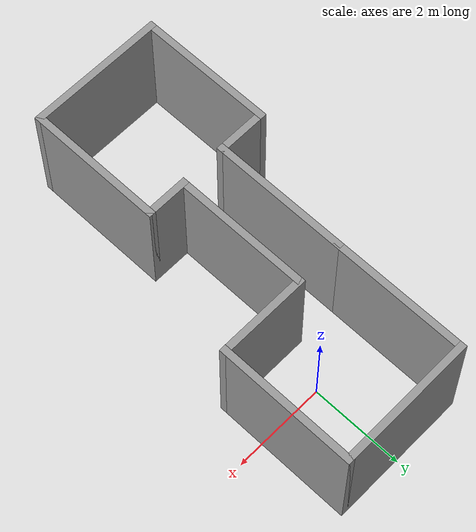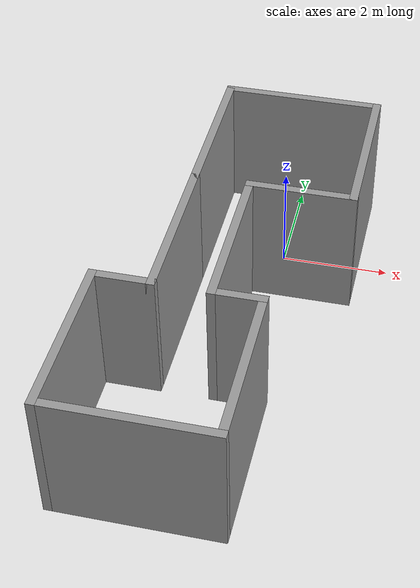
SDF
<?xml version='1.0'?>
<sdf version='1.7'>
  <model name='map'>
    <pose>-0.55321 -2.39059 0 0 -0 0</pose>
    <link name='Wall_10'>
      <collision name='Wall_10_Collision'>
        <geometry>
          <box>
            <size>3 0.15 2.5</size>
          </box>
        </geometry>
        <pose>0 0 1.25 0 -0 0</pose>
      </collision>
      <visual name='Wall_10_Visual'>
        <pose>0 0 1.25 0 -0 0</pose>
        <geometry>
          <box>
            <size>3 0.15 2.5</size>
          </box>
        </geometry>
        <material>
          <script>
            <uri>file://media/materials/scripts/gazebo.material</uri>
            <name>Gazebo/Grey</name>
          </script>
          <ambient>1 1 1 1</ambient>
        </material>
        <meta>
          <layer>0</layer>
        </meta>
      </visual>
      <pose>0.5 4.275 0 0 -0 0</pose>
    </link>
    <link name='Wall_11'>
      <collision name='Wall_11_Collision'>
        <geometry>
          <box>
            <size>3 0.15 2.5</size>
          </box>
        </geometry>
        <pose>0 0 1.25 0 -0 0</pose>
      </collision>
      <visual name='Wall_11_Visual'>
        <pose>0 0 1.25 0 -0 0</pose>
        <geometry>
          <box>
            <size>3 0.15 2.5</size>
          </box>
        </geometry>
        <material>
          <script>
            <uri>file://media/materials/scripts/gazebo.material</uri>
            <name>Gazebo/Grey</name>
          </script>
          <ambient>1 1 1 1</ambient>
        </material>
        <meta>
          <layer>0</layer>
        </meta>
      </visual>
      <pose>1.925 2.85 0 0 -0 -1.5708</pose>
    </link>
    <link name='Wall_12'>
      <collision name='Wall_12_Collision'>
        <geometry>
          <box>
            <size>2 0.15 2.5</size>
          </box>
        </geometry>
        <pose>0 0 1.25 0 -0 0</pose>
      </collision>
      <visual name='Wall_12_Visual'>
        <pose>0 0 1.25 0 -0 0</pose>
        <geometry>
          <box>
            <size>2 0.15 2.5</size>
          </box>
        </geometry>
        <material>
          <script>
            <uri>file://media/materials/scripts/gazebo.material</uri>
            <name>Gazebo/Grey</name>
          </script>
          <ambient>1 1 1 1</ambient>
        </material>
        <meta>
          <layer>0</layer>
        </meta>
      </visual>
      <pose>1 1.425 0 0 -0 3.14159</pose>
    </link>
    <link name='Wall_14'>
      <collision name='Wall_14_Collision'>
        <geometry>
          <box>
            <size>3 0.15 2.5</size>
          </box>
        </geometry>
        <pose>0 0 1.25 0 -0 0</pose>
      </collision>
      <visual name='Wall_14_Visual'>
        <pose>0 0 1.25 0 -0 0</pose>
        <geometry>
          <box>
            <size>3 0.15 2.5</size>
          </box>
        </geometry>
        <material>
          <script>
            <uri>file://media/materials/scripts/gazebo.material</uri>
            <name>Gazebo/Grey</name>
          </script>
          <ambient>1 1 1 1</ambient>
        </material>
        <meta>
          <layer>0</layer>
        </meta>
      </visual>
      <pose>-0.925 2.85 0 0 -0 -1.5708</pose>
    </link>
    <link name='Wall_16'>
      <collision name='Wall_16_Collision'>
        <geometry>
          <box>
            <size>3 0.15 2.5</size>
          </box>
        </geometry>
        <pose>0 0 1.25 0 -0 0</pose>
      </collision>
      <visual name='Wall_16_Visual'>
        <pose>0 0 1.25 0 -0 0</pose>
        <geometry>
          <box>
            <size>3 0.15 2.5</size>
          </box>
        </geometry>
        <material>
          <script>
            <uri>file://media/materials/scripts/gazebo.material</uri>
            <name>Gazebo/Grey</name>
          </script>
          <ambient>1 1 1 1</ambient>
        </material>
        <meta>
          <layer>0</layer>
        </meta>
      </visual>
      <pose>-0.925 0 0 0 -0 -1.5708</pose>
    </link>
    <link name='Wall_17'>
      <collision name='Wall_17_Collision'>
        <geometry>
          <box>
            <size>1 0.15 2.5</size>
          </box>
        </geometry>
        <pose>0 0 1.25 0 -0 0</pose>
      </collision>
      <visual name='Wall_17_Visual'>
        <pose>0 0 1.25 0 -0 0</pose>
        <geometry>
          <box>
            <size>1 0.15 2.5</size>
          </box>
        </geometry>
        <material>
          <script>
            <uri>file://media/materials/scripts/gazebo.material</uri>
            <name>Gazebo/Grey</name>
          </script>
          <ambient>1 1 1 1</ambient>
        </material>
        <meta>
          <layer>0</layer>
        </meta>
      </visual>
      <pose>-1.35 -1.425 0 0 -0 3.14159</pose>
    </link>
    <link name='Wall_19'>
      <collision name='Wall_19_Collision'>
        <geometry>
          <box>
            <size>3 0.15 2.5</size>
          </box>
        </geometry>
        <pose>0 0 1.25 0 -0 0</pose>
      </collision>
      <visual name='Wall_19_Visual'>
        <pose>0 0 1.25 0 -0 0</pose>
        <geometry>
          <box>
            <size>3 0.15 2.5</size>
          </box>
        </geometry>
        <material>
          <script>
            <uri>file://media/materials/scripts/gazebo.material</uri>
            <name>Gazebo/Grey</name>
          </script>
          <ambient>1 1 1 1</ambient>
        </material>
        <meta>
          <layer>0</layer>
        </meta>
      </visual>
      <pose>0.075 0 0 0 -0 -1.5708</pose>
    </link>
    <link name='Wall_20'>
      <collision name='Wall_20_Collision'>
        <geometry>
          <box>
            <size>1 0.15 2.5</size>
          </box>
        </geometry>
        <pose>0 0 1.25 0 -0 0</pose>
      </collision>
      <visual name='Wall_20_Visual'>
        <pose>0 0 1.25 0 -0 0</pose>
        <geometry>
          <box>
            <size>1 0.15 2.5</size>
          </box>
        </geometry>
        <material>
          <script>
            <uri>file://media/materials/scripts/gazebo.material</uri>
            <name>Gazebo/Grey</name>
          </script>
          <ambient>1 1 1 1</ambient>
        </material>
        <meta>
          <layer>0</layer>
        </meta>
      </visual>
      <pose>0.5 -1.425 0 0 -0 0</pose>
    </link>
    <link name='Wall_21'>
      <collision name='Wall_21_Collision'>
        <geometry>
          <box>
            <size>3 0.15 2.5</size>
          </box>
        </geometry>
        <pose>0 0 1.25 0 -0 0</pose>
      </collision>
      <visual name='Wall_21_Visual'>
        <pose>0 0 1.25 0 -0 0</pose>
        <geometry>
          <box>
            <size>3 0.15 2.5</size>
          </box>
        </geometry>
        <material>
          <script>
            <uri>file://media/materials/scripts/gazebo.material</uri>
            <name>Gazebo/Grey</name>
          </script>
          <ambient>1 1 1 1</ambient>
        </material>
        <meta>
          <layer>0</layer>
        </meta>
      </visual>
      <pose>0.925 -2.85 0 0 -0 -1.5708</pose>
    </link>
    <link name='Wall_22'>
      <collision name='Wall_22_Collision'>
        <geometry>
          <box>
            <size>3 0.15 2.5</size>
          </box>
        </geometry>
        <pose>0 0 1.25 0 -0 0</pose>
      </collision>
      <visual name='Wall_22_Visual'>
        <pose>0 0 1.25 0 -0 0</pose>
        <geometry>
          <box>
            <size>3 0.15 2.5</size>
          </box>
        </geometry>
        <material>
          <script>
            <uri>file://media/materials/scripts/gazebo.material</uri>
            <name>Gazebo/Grey</name>
          </script>
          <ambient>1 1 1 1</ambient>
        </material>
        <meta>
          <layer>0</layer>
        </meta>
      </visual>
      <pose>-0.5 -4.275 0 0 -0 3.14159</pose>
    </link>
    <link name='Wall_23'>
      <collision name='Wall_23_Collision'>
        <geometry>
          <box>
            <size>3 0.15 2.5</size>
          </box>
        </geometry>
        <pose>0 0 1.25 0 -0 0</pose>
      </collision>
      <visual name='Wall_23_Visual'>
        <pose>0 0 1.25 0 -0 0</pose>
        <geometry>
          <box>
            <size>3 0.15 2.5</size>
          </box>
        </geometry>
        <material>
          <script>
            <uri>file://media/materials/scripts/gazebo.material</uri>
            <name>Gazebo/Grey</name>
          </script>
          <ambient>1 1 1 1</ambient>
        </material>
        <meta>
          <layer>0</layer>
        </meta>
      </visual>
      <pose>-1.925 -2.85 0 0 -0 1.5708</pose>
    </link>
    <static>1</static>
  </model>
</sdf>
